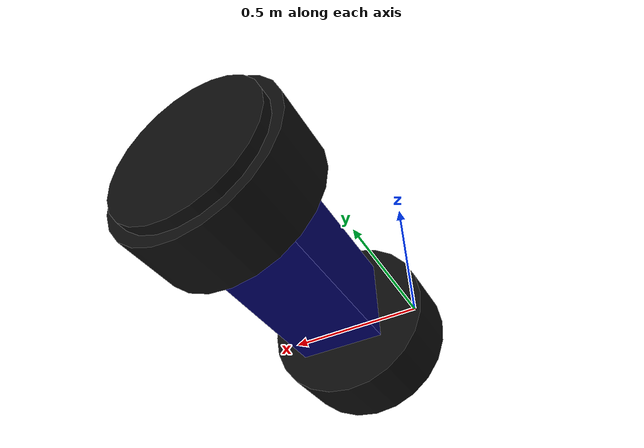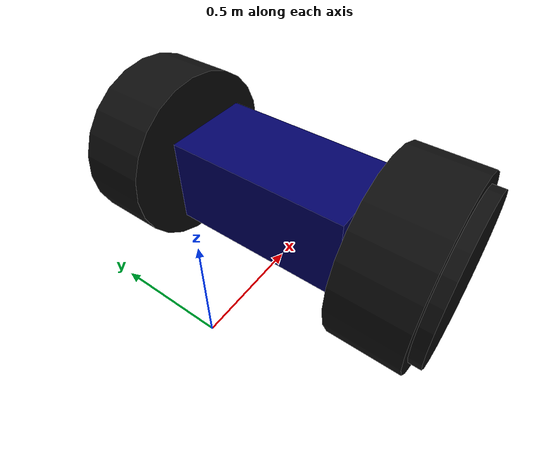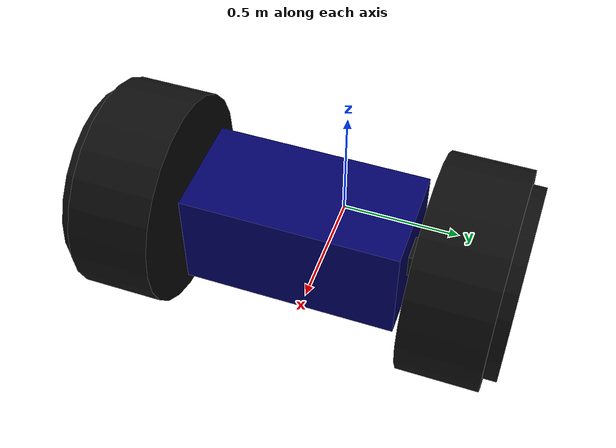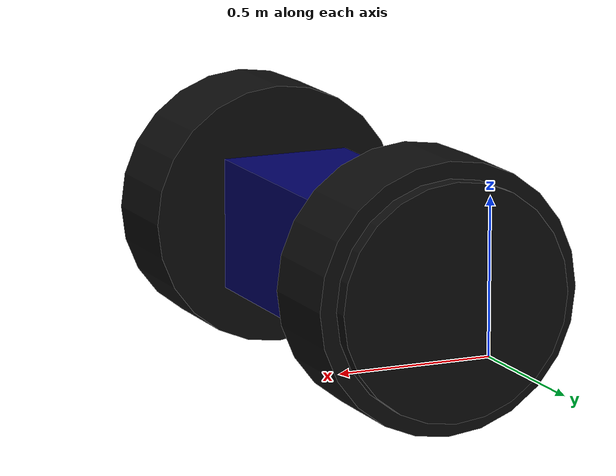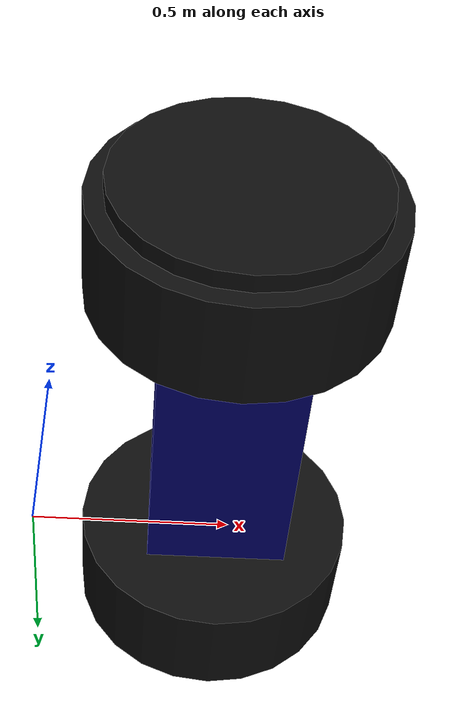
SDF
<?xml version="1.0"?>
<sdf version="1.7">

    <model name="mini_robot">

        <frame name="lidar_frame" attached_to="base_link">
            <pose>0.8 0 0.5 0 0 0</pose>
        </frame>

        <!-- BASE LINK -->
        <link name="base_link">
            <pose relative_to="__model__">0.5 0 0.4 0 0 0</pose>
            <collision name="base_collision">
                <geometry>
                    <box>
                        <size>0.4 0.8 0.4</size>
                    </box>
                </geometry>
            </collision>
            <visual name="base_visual">
                <geometry>
                    <box>
                        <size>0.4 0.8 0.4</size>
                    </box>
                </geometry>
                <material>
                    <ambient>0.0 0.0 0.3 1</ambient>
                    <diffuse>0.0 0.0 0.4 1</diffuse>
                    <specular>0.1 0.1 0.3 1</specular>
                </material>
            </visual>
            <inertial>
                <inertia>
                        <ixx>0.095329</ixx>
                        <ixy>0</ixy>
                        <ixz>0</ixz>
                        <iyy>0.381317</iyy>
                        <iyz>0</iyz>
                        <izz>0.476646</izz>
                </inertia>
            </inertial>

        </link>

        <link name="base_to_left_wheel">
            <pose relative_to="base_link">0 0.4 0 0 0 0</pose>
            <visual name="base_to_left_wheel_visual">
                <geometry>
                    <box>
                        <size>0.1 0.1 0.1</size>
                    </box>
                </geometry>
                <material>
                    <ambient>0.05 0.05 0.05 1</ambient>
                    <diffuse>0.05 0.05 0.05 1</diffuse>
                    <specular>0.1 0.1 0.1 1</specular>
                </material>
            </visual>
            <collision name="base_to_left_wheel_collision">
                <geometry>
                    <box>
                        <size>0.1 0.1 0.1</size>
                    </box>
                </geometry>
            </collision>
            <inertial>
                <inertia>
                    <ixx>0.0001</ixx>
                    <ixy>0</ixy>
                    <ixz>0</ixz>
                    <iyy>0.0001</iyy>
                    <iyz>0</iyz>
                    <izz>0.0001</izz>
                </inertia>
            </inertial>
        </link>

        <link name="base_to_right_wheel">
            <pose relative_to="base_link">0 -0.4 0 0 0 0</pose>
            <visual name="base_to_right_wheel_visual">
                <geometry>
                    <box>
                        <size>0.1 0.1 0.1</size>
                    </box>
                </geometry>
                <material>
                    <ambient>0.05 0.05 0.05 1</ambient>
                    <diffuse>0.05 0.05 0.05 1</diffuse>
                    <specular>0.1 0.1 0.1 1</specular>
                </material>
            </visual>
            <collision name="base_to_right_wheel_collision">
                <geometry>
                    <box>
                        <size>0.1 0.1 0.1</size>
                    </box>
                </geometry>
            </collision>
            <inertial>
                <inertia>
                    <ixx>0.0001</ixx>
                    <ixy>0</ixy>
                    <ixz>0</ixz>
                    <iyy>0.0001</iyy>
                    <iyz>0</iyz>
                    <izz>0.0001</izz>
                </inertia>
            </inertial>
        </link>

        <!-- LEFT WHEELS -->
        <link name="left_wheel_link">
            <pose relative_to="base_link">0 0.6 0 -1.5707 0 0</pose>
            <collision name="left_wheel_collision">
                <geometry>
                    <cylinder>
                        <radius>0.4</radius>
                        <length>0.3</length>
                    </cylinder>
                </geometry>
            </collision>
            <visual name="left_wheel_visual">
                <geometry>
                    <cylinder>
                        <radius>0.4</radius>
                        <length>0.3</length>
                    </cylinder>
                </geometry>
                <material>
                    <ambient>0.05 0.05 0.05 1</ambient>
                    <diffuse>0.05 0.05 0.05 1</diffuse>
                    <specular>0.1 0.1 0.1 1</specular>
                </material>
            </visual>
            <inertial>
                <inertia>
                        <ixx>0.00125</ixx>
                        <ixy>0</ixy>
                        <ixz>0</ixz>
                        <iyy>0.00125</iyy>
                        <iyz>0</iyz>
                        <izz>0.0001</izz>
                </inertia>
            </inertial>
        </link>

        <!-- RIGHT WHEEL -->
        <link name="right_wheel_link">
            <pose relative_to="base_link">0 -0.6 0 -1.5707 0 0</pose>
            <collision name="right_wheel_collision">
                <geometry>
                    <cylinder>
                        <radius>0.4</radius>
                        <length>0.3</length>
                    </cylinder>
                </geometry>
            </collision>
            <visual name="right_wheel_visual">
                <geometry>
                    <cylinder>
                        <radius>0.4</radius>
                        <length>0.3</length>
                    </cylinder>
                </geometry>
                <material>
                    <ambient>0.05 0.05 0.05 1</ambient>
                    <diffuse>0.05 0.05 0.05 1</diffuse>
                    <specular>0.1 0.1 0.1 1</specular>
                </material>
            </visual>
            <inertial>
                <inertia>
                        <ixx>0.00125</ixx>
                        <ixy>0</ixy>
                        <ixz>0</ixz>
                        <iyy>0.00125</iyy>
                        <iyz>0</iyz>
                        <izz>0.0001</izz>
                </inertia>
            </inertial>
        </link>

        <link name="left_wheel_detail_link">
            <pose relative_to="base_link">0 0.75 0 -1.5707 0 0</pose>
            <collision name="left_wheel_detail_collision">
                <geometry>
                    <cylinder>
                        <radius>0.35</radius>
                        <length>0.1</length>
                    </cylinder>
                </geometry>
            </collision>
            <visual name="left_wheel_detail_visual">
                <geometry>
                    <cylinder>
                        <radius>0.35</radius>
                        <length>0.1</length>
                    </cylinder>
                </geometry>
                <material>
                    <ambient>0.05 0.05 0.05 1</ambient>
                    <diffuse>0.05 0.05 0.05 1</diffuse>
                    <specular>0.1 0.1 0.1 1</specular>
                </material>
            </visual>
            <inertial>
                <inertia>
                        <ixx>0.00125</ixx>
                        <ixy>0</ixy>
                        <ixz>0</ixz>
                        <iyy>0.00125</iyy>
                        <iyz>0</iyz>
                        <izz>0.0001</izz>
                </inertia>
            </inertial>
        </link>

        <link name="right_wheel_detail_link">
            <pose relative_to="base_link">0 -0.75 0 -1.5707 0 0</pose>
            <collision name="right_wheel_detail_collision">
                <geometry>
                    <cylinder>
                        <radius>0.35</radius>
                        <length>0.1</length>
                    </cylinder>
                </geometry>
            </collision>
            <visual name="right_wheel_detail_visual">
                <geometry>
                    <cylinder>
                        <radius>0.35</radius>
                        <length>0.1</length>
                    </cylinder>
                </geometry>
                <material>
                    <ambient>0.05 0.05 0.05 1</ambient>
                    <diffuse>0.05 0.05 0.05 1</diffuse>
                    <specular>0.1 0.1 0.1 1</specular>
                </material>
            </visual>
            <inertial>
                <inertia>
                        <ixx>0.00125</ixx>
                        <ixy>0</ixy>
                        <ixz>0</ixz>
                        <iyy>0.00125</iyy>
                        <iyz>0</iyz>
                        <izz>0.0001</izz>
                </inertia>
            </inertial>
        </link>

        <!-- JOINTS -->

        <joint name="base_to_left_wheel_joint" type="fixed">
            <pose relative_to="base_link"/>
            <parent>base_link</parent>
            <child>base_to_left_wheel</child>
        </joint>

        <joint name="base_to_right_wheel_joint" type="fixed">
            <pose relative_to="base_link"/>
            <parent>base_link</parent>
            <child>base_to_right_wheel</child>
        </joint>

        <joint name="left_wheel_joint" type="revolute">
            <pose relative_to="left_wheel_link"/>
            <parent>base_to_left_wheel</parent>
            <child>left_wheel_link</child>
            <axis>
                <xyz>0 0 1</xyz>
                <limit>
                    <lower>-1.79769e+308</lower>
                    <upper>1.79769e+308</upper>
                </limit>
            </axis>
        </joint>

        <joint name="right_wheel_joint" type="revolute">
            <pose relative_to="right_wheel_link"/>
            <parent>base_to_right_wheel</parent>
            <child>right_wheel_link</child>
            <axis>
                <xyz>0 0 1</xyz>
                <limit>
                    <lower>-1.79769e+308</lower>
                    <upper>1.79769e+308</upper>
                </limit>
            </axis>
        </joint>

        <joint name="left_wheel_detail_joint" type="fixed">
            <pose relative_to="left_wheel_link"/>
            <parent>left_wheel_link</parent>
            <child>left_wheel_detail_link</child>
        </joint>

        <joint name="right_wheel_detail_joint" type="fixed">
            <pose relative_to="right_wheel_link"/>
            <parent>right_wheel_link</parent>
            <child>right_wheel_detail_link</child>
        </joint>

        <plugin
            filename="libignition-gazebo-diff-drive-system.so"
            name="ignition::gazebo::systems::DiffDrive">
            <left_joint>left_wheel_joint</left_joint>
            <right_joint>right_wheel_joint</right_joint>
            <wheel_separation>1.2</wheel_separation>
            <wheel_radius>0.4</wheel_radius>
            <odom_publish_frequency>1</odom_publish_frequency>
            <topic>/cmd_vel</topic>
        </plugin>

        <!-- W = MOVE FORWARD -->
        <plugin filename="gz-sim-triggered-publisher-system" name="gz::sim::systems::TriggeredPublisher">
            <input type="gz.msgs.Int32" topic="/keyboard/keypress">
                <match field="data">87</match>
            </input>
            <output type="gz.msgs.Twist" topic="/cmd_vel">
                linear: {x: 2}, angular: {z: 0.0}
            </output>
        </plugin>

        <!-- S = MOVE BACKWARD -->

        <plugin filename="gz-sim-triggered-publisher-system" name="gz::sim::systems::TriggeredPublisher">
            <input type="gz.msgs.Int32" topic="/keyboard/keypress">
                <match field="data">83</match>
            </input>
            <output type="gz.msgs.Twist" topic="/cmd_vel">
                linear: {x: -2}, angular: {z: 0.0}
            </output>
        </plugin>

        <!-- A = TURN LEFT -->
        <plugin filename="gz-sim-triggered-publisher-system" name="gz::sim::systems::TriggeredPublisher">
            <input type="gz.msgs.Int32" topic="/keyboard/keypress">
                <match field="data">65</match>
            </input>
            <output type="gz.msgs.Twist" topic="/cmd_vel">
                linear: {x: 0.0}, angular: {z: 0.5}
            </output>
        </plugin>

        <!-- D = TURN RIGHT -->
        <plugin filename="gz-sim-triggered-publisher-system" name="gz::sim::systems::TriggeredPublisher">
            <input type="gz.msgs.Int32" topic="/keyboard/keypress">
            <match field="data">68</match>
            </input>
            <output type="gz.msgs.Twist" topic="/cmd_vel">
            linear: {x: 0.0}, angular: {z: -0.5}
            </output>
        </plugin>

    </model>
</sdf>
